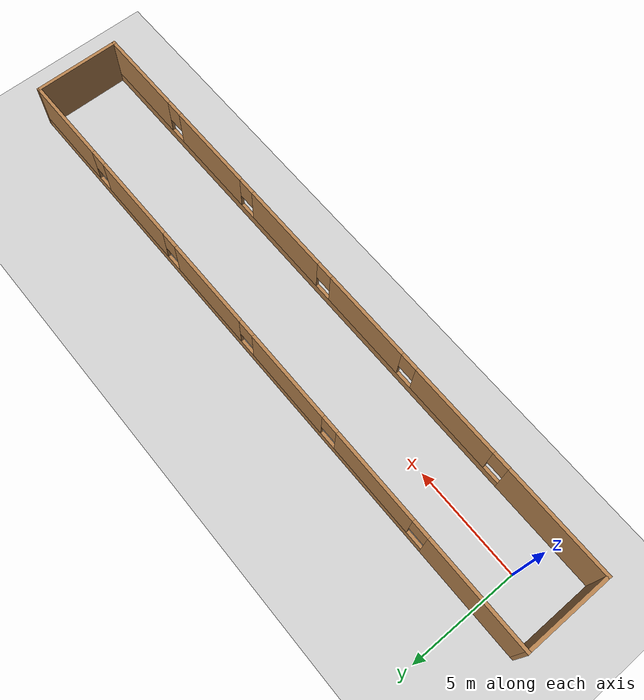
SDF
<sdf version="1.7">
 <world name="default">
  <light name="sun" type="directional">
   <pose>0 0 10 0 -0 0</pose>
   <diffuse>0.8 0.8 0.8 1</diffuse>
   <specular>0.2 0.2 0.2 1</specular>
   <attenuation>
    <range>1000</range>
    <constant>0.9</constant>
    <linear>0.01</linear>
    <quadratic>0.001</quadratic>
   </attenuation>
   <direction>-0.5 0.1 -0.9</direction>
   <spot><inner_angle>0</inner_angle><outer_angle>0</outer_angle><falloff>0</falloff></spot>
  </light>
  <model name="ground_plane">
   <static>1</static>
   <link name="link">
    <collision name="collision">
     <geometry><plane><normal>0 0 1</normal><size>100 100</size></plane></geometry>
     <surface>
      <contact><collide_bitmask>65535</collide_bitmask></contact>
      <friction><ode><mu>100</mu><mu2>50</mu2></ode></friction>
     </surface>
    </collision>
    <visual name="visual">
     <cast_shadows>0</cast_shadows>
     <geometry><plane><normal>0 0 1</normal><size>100 100</size></plane></geometry>
     <material>
      <script><uri>file://media/materials/scripts/gazebo.material</uri><name>Gazebo/Grey</name></script>
     </material>
    </visual>
   </link>
  </model>
  <gravity>0 0 -9.8</gravity>
  <magnetic_field>6e-06 2.3e-05 -4.2e-05</magnetic_field>
  <atmosphere type="adiabatic"/>
  <physics type="ode">
   <max_step_size>0.001</max_step_size>
   <real_time_factor>1</real_time_factor>
   <real_time_update_rate>1000</real_time_update_rate>
  </physics>
  <scene><ambient>0.4 0.4 0.4 1</ambient><background>0.7 0.7 0.7 1</background><shadows>1</shadows></scene>
  <spherical_coordinates>
   <surface_model>EARTH_WGS84</surface_model>
   <latitude_deg>0</latitude_deg>
   <longitude_deg>0</longitude_deg>
   <elevation>0</elevation>
   <heading_deg>0</heading_deg>
  </spherical_coordinates>
  <model name="corredor2">
   <pose>12.8414 0.061991 0 0 -0 0</pose>
   <link name="Wall_11">
    <collision name="Wall_11_Collision">
     <geometry><box><size>4.09332 0.15 2.5</size></box></geometry>
     <pose>0 0 1.25 0 -0 0</pose>
    </collision>
    <visual name="Wall_11_Visual">
     <pose>0 0 1.25 0 -0 0</pose>
     <geometry><box><size>4.09332 0.15 2.5</size></box></geometry>
     <material>
      <script><uri>file://media/materials/scripts/gazebo.material</uri><name>Gazebo/Wood</name></script>
      <ambient>1 1 1 1</ambient>
     </material>
     <meta><layer>0</layer></meta>
    </visual>
    <pose>-14.925 -0 0 0 -0 1.5708</pose>
   </link>
   <link name="Wall_13">
    <pose>-1e-06 1.97152 0 0 -0 0</pose>
    <visual name="Wall_13_Visual_0">
     <pose>-12.4917 0 1.25 0 -0 0</pose>
     <geometry><box><size>5.01668 0.15 2.5</size></box></geometry>
     <material>
      <script><uri>file://media/materials/scripts/gazebo.material</uri><name>Gazebo/Wood</name></script>
      <ambient>1 1 1 1</ambient>
     </material>
     <meta><layer>0</layer></meta>
    </visual>
    <collision name="Wall_13_Collision_0">
     <geometry><box><size>5.01668 0.15 2.5</size></box></geometry>
     <pose>-12.4917 0 1.25 0 -0 0</pose>
    </collision>
    <visual name="Wall_13_Visual_1">
     <pose>2.50834 0 0.25 0 -0 0</pose>
     <geometry><box><size>24.9833 0.15 0.5</size></box></geometry>
     <material>
      <script><uri>file://media/materials/scripts/gazebo.material</uri><name>Gazebo/Wood</name></script>
      <ambient>1 1 1 1</ambient>
     </material>
     <meta><layer>0</layer></meta>
    </visual>
    <collision name="Wall_13_Collision_1">
     <geometry><box><size>24.9833 0.15 0.5</size></box></geometry>
     <pose>2.50834 0 0.25 0 -0 0</pose>
    </collision>
    <visual name="Wall_13_Visual_2">
     <pose>-7.08924 0 1.5 0 -0 0</pose>
     <geometry><box><size>4.18817 0.15 2</size></box></geometry>
     <material>
      <script><uri>file://media/materials/scripts/gazebo.material</uri><name>Gazebo/Wood</name></script>
      <ambient>1 1 1 1</ambient>
     </material>
     <meta><layer>0</layer></meta>
    </visual>
    <collision name="Wall_13_Collision_2">
     <geometry><box><size>4.18817 0.15 2</size></box></geometry>
     <pose>-7.08924 0 1.5 0 -0 0</pose>
    </collision>
    <visual name="Wall_13_Visual_3">
     <pose>-2.09102 0 1.5 0 -0 0</pose>
     <geometry><box><size>4.20828 0.15 2</size></box></geometry>
     <material>
      <script><uri>file://media/materials/scripts/gazebo.material</uri><name>Gazebo/Wood</name></script>
      <ambient>1 1 1 1</ambient>
     </material>
     <meta><layer>0</layer></meta>
    </visual>
    <collision name="Wall_13_Collision_3">
     <geometry><box><size>4.20828 0.15 2</size></box></geometry>
     <pose>-2.09102 0 1.5 0 -0 0</pose>
    </collision>
    <visual name="Wall_13_Visual_4">
     <pose>2.90721 0 1.5 0 -0 0</pose>
     <geometry><box><size>4.18816 0.15 2</size></box></geometry>
     <material>
      <script><uri>file://media/materials/scripts/gazebo.material</uri><name>Gazebo/Wood</name></script>
      <ambient>1 1 1 1</ambient>
     </material>
     <meta><layer>0</layer></meta>
    </visual>
    <collision name="Wall_13_Collision_4">
     <geometry><box><size>4.18816 0.15 2</size></box></geometry>
     <pose>2.90721 0 1.5 0 -0 0</pose>
    </collision>
    <visual name="Wall_13_Visual_5">
     <pose>7.90362 0 1.5 0 -0 0</pose>
     <geometry><box><size>4.20467 0.15 2</size></box></geometry>
     <material>
      <script><uri>file://media/materials/scripts/gazebo.material</uri><name>Gazebo/Wood</name></script>
      <ambient>1 1 1 1</ambient>
     </material>
     <meta><layer>0</layer></meta>
    </visual>
    <collision name="Wall_13_Collision_5">
     <geometry><box><size>4.20467 0.15 2</size></box></geometry>
     <pose>7.90362 0 1.5 0 -0 0</pose>
    </collision>
    <visual name="Wall_13_Visual_6">
     <pose>12.903 0 1.5 0 -0 0</pose>
     <geometry><box><size>4.19404 0.15 2</size></box></geometry>
     <material>
      <script><uri>file://media/materials/scripts/gazebo.material</uri><name>Gazebo/Wood</name></script>
      <ambient>1 1 1 1</ambient>
     </material>
     <meta><layer>0</layer></meta>
    </visual>
    <collision name="Wall_13_Collision_6">
     <geometry><box><size>4.19404 0.15 2</size></box></geometry>
     <pose>12.903 0 1.5 0 -0 0</pose>
    </collision>
    <visual name="Wall_13_Visual_7">
     <pose>-9.58332 0 1.9 0 -0 0</pose>
     <geometry><box><size>0.8 0.15 1.2</size></box></geometry>
     <material>
      <script><uri>file://media/materials/scripts/gazebo.material</uri><name>Gazebo/Wood</name></script>
      <ambient>1 1 1 1</ambient>
     </material>
     <meta><layer>0</layer></meta>
    </visual>
    <collision name="Wall_13_Collision_7">
     <geometry><box><size>0.8 0.15 1.2</size></box></geometry>
     <pose>-9.58332 0 1.9 0 -0 0</pose>
    </collision>
    <visual name="Wall_13_Visual_8">
     <pose>-4.59516 0 1.9 0 -0 0</pose>
     <geometry><box><size>0.8 0.15 1.2</size></box></geometry>
     <material>
      <script><uri>file://media/materials/scripts/gazebo.material</uri><name>Gazebo/Wood</name></script>
      <ambient>1 1 1 1</ambient>
     </material>
     <meta><layer>0</layer></meta>
    </visual>
    <collision name="Wall_13_Collision_8">
     <geometry><box><size>0.8 0.15 1.2</size></box></geometry>
     <pose>-4.59516 0 1.9 0 -0 0</pose>
    </collision>
    <visual name="Wall_13_Visual_9">
     <pose>0.413124 0 1.9 0 -0 0</pose>
     <geometry><box><size>0.8 0.15 1.2</size></box></geometry>
     <material>
      <script><uri>file://media/materials/scripts/gazebo.material</uri><name>Gazebo/Wood</name></script>
      <ambient>1 1 1 1</ambient>
     </material>
     <meta><layer>0</layer></meta>
    </visual>
    <collision name="Wall_13_Collision_9">
     <geometry><box><size>0.8 0.15 1.2</size></box></geometry>
     <pose>0.413124 0 1.9 0 -0 0</pose>
    </collision>
    <visual name="Wall_13_Visual_10">
     <pose>5.40129 0 1.9 0 -0 0</pose>
     <geometry><box><size>0.8 0.15 1.2</size></box></geometry>
     <material>
      <script><uri>file://media/materials/scripts/gazebo.material</uri><name>Gazebo/Wood</name></script>
      <ambient>1 1 1 1</ambient>
     </material>
     <meta><layer>0</layer></meta>
    </visual>
    <collision name="Wall_13_Collision_10">
     <geometry><box><size>0.8 0.15 1.2</size></box></geometry>
     <pose>5.40129 0 1.9 0 -0 0</pose>
    </collision>
    <visual name="Wall_13_Visual_11">
     <pose>10.406 0 1.9 0 -0 0</pose>
     <geometry><box><size>0.8 0.15 1.2</size></box></geometry>
     <material>
      <script><uri>file://media/materials/scripts/gazebo.material</uri><name>Gazebo/Wood</name></script>
      <ambient>1 1 1 1</ambient>
     </material>
     <meta><layer>0</layer></meta>
    </visual>
    <collision name="Wall_13_Collision_11">
     <geometry><box><size>0.8 0.15 1.2</size></box></geometry>
     <pose>10.406 0 1.9 0 -0 0</pose>
    </collision>
   </link>
   <link name="Wall_15">
    <pose>-1e-06 -1.97152 0 0 -0 0</pose>
    <visual name="Wall_15_Visual_0">
     <pose>-12.5006 0 1.25 0 -0 0</pose>
     <geometry><box><size>4.99882 0.15 2.5</size></box></geometry>
     <material>
      <script><uri>file://media/materials/scripts/gazebo.material</uri><name>Gazebo/Wood</name></script>
      <ambient>1 1 1 1</ambient>
     </material>
     <meta><layer>0</layer></meta>
    </visual>
    <collision name="Wall_15_Collision_0">
     <geometry><box><size>4.99882 0.15 2.5</size></box></geometry>
     <pose>-12.5006 0 1.25 0 -0 0</pose>
    </collision>
    <visual name="Wall_15_Visual_1">
     <pose>2.49941 0 0.25 0 -0 0</pose>
     <geometry><box><size>25.0012 0.15 0.5</size></box></geometry>
     <material>
      <script><uri>file://media/materials/scripts/gazebo.material</uri><name>Gazebo/Wood</name></script>
      <ambient>1 1 1 1</ambient>
     </material>
     <meta><layer>0</layer></meta>
    </visual>
    <collision name="Wall_15_Collision_1">
     <geometry><box><size>25.0012 0.15 0.5</size></box></geometry>
     <pose>2.49941 0 0.25 0 -0 0</pose>
    </collision>
    <visual name="Wall_15_Visual_2">
     <pose>-7.1001 0 1.5 0 -0 0</pose>
     <geometry><box><size>4.20216 0.15 2</size></box></geometry>
     <material>
      <script><uri>file://media/materials/scripts/gazebo.material</uri><name>Gazebo/Wood</name></script>
      <ambient>1 1 1 1</ambient>
     </material>
     <meta><layer>0</layer></meta>
    </visual>
    <collision name="Wall_15_Collision_2">
     <geometry><box><size>4.20216 0.15 2</size></box></geometry>
     <pose>-7.1001 0 1.5 0 -0 0</pose>
    </collision>
    <visual name="Wall_15_Visual_3">
     <pose>-2.09794 0 1.5 0 -0 0</pose>
     <geometry><box><size>4.20216 0.15 2</size></box></geometry>
     <material>
      <script><uri>file://media/materials/scripts/gazebo.material</uri><name>Gazebo/Wood</name></script>
      <ambient>1 1 1 1</ambient>
     </material>
     <meta><layer>0</layer></meta>
    </visual>
    <collision name="Wall_15_Collision_3">
     <geometry><box><size>4.20216 0.15 2</size></box></geometry>
     <pose>-2.09794 0 1.5 0 -0 0</pose>
    </collision>
    <visual name="Wall_15_Visual_4">
     <pose>2.90736 0 1.5 0 -0 0</pose>
     <geometry><box><size>4.20844 0.15 2</size></box></geometry>
     <material>
      <script><uri>file://media/materials/scripts/gazebo.material</uri><name>Gazebo/Wood</name></script>
      <ambient>1 1 1 1</ambient>
     </material>
     <meta><layer>0</layer></meta>
    </visual>
    <collision name="Wall_15_Collision_4">
     <geometry><box><size>4.20844 0.15 2</size></box></geometry>
     <pose>2.90736 0 1.5 0 -0 0</pose>
    </collision>
    <visual name="Wall_15_Visual_5">
     <pose>7.91045 0 1.5 0 -0 0</pose>
     <geometry><box><size>4.19773 0.15 2</size></box></geometry>
     <material>
      <script><uri>file://media/materials/scripts/gazebo.material</uri><name>Gazebo/Wood</name></script>
      <ambient>1 1 1 1</ambient>
     </material>
     <meta><layer>0</layer></meta>
    </visual>
    <collision name="Wall_15_Collision_5">
     <geometry><box><size>4.19773 0.15 2</size></box></geometry>
     <pose>7.91045 0 1.5 0 -0 0</pose>
    </collision>
    <visual name="Wall_15_Visual_6">
     <pose>12.9047 0 1.5 0 -0 0</pose>
     <geometry><box><size>4.19069 0.15 2</size></box></geometry>
     <material>
      <script><uri>file://media/materials/scripts/gazebo.material</uri><name>Gazebo/Wood</name></script>
      <ambient>1 1 1 1</ambient>
     </material>
     <meta><layer>0</layer></meta>
    </visual>
    <collision name="Wall_15_Collision_6">
     <geometry><box><size>4.19069 0.15 2</size></box></geometry>
     <pose>12.9047 0 1.5 0 -0 0</pose>
    </collision>
    <visual name="Wall_15_Visual_7">
     <pose>-9.60118 0 1.9 0 -0 0</pose>
     <geometry><box><size>0.8 0.15 1.2</size></box></geometry>
     <material>
      <script><uri>file://media/materials/scripts/gazebo.material</uri><name>Gazebo/Wood</name></script>
      <ambient>1 1 1 1</ambient>
     </material>
     <meta><layer>0</layer></meta>
    </visual>
    <collision name="Wall_15_Collision_7">
     <geometry><box><size>0.8 0.15 1.2</size></box></geometry>
     <pose>-9.60118 0 1.9 0 -0 0</pose>
    </collision>
    <visual name="Wall_15_Visual_8">
     <pose>-4.59902 0 1.9 0 -0 0</pose>
     <geometry><box><size>0.8 0.15 1.2</size></box></geometry>
     <material>
      <script><uri>file://media/materials/scripts/gazebo.material</uri><name>Gazebo/Wood</name></script>
      <ambient>1 1 1 1</ambient>
     </material>
     <meta><layer>0</layer></meta>
    </visual>
    <collision name="Wall_15_Collision_8">
     <geometry><box><size>0.8 0.15 1.2</size></box></geometry>
     <pose>-4.59902 0 1.9 0 -0 0</pose>
    </collision>
    <visual name="Wall_15_Visual_9">
     <pose>0.403136 0 1.9 0 -0 0</pose>
     <geometry><box><size>0.8 0.15 1.2</size></box></geometry>
     <material>
      <script><uri>file://media/materials/scripts/gazebo.material</uri><name>Gazebo/Wood</name></script>
      <ambient>1 1 1 1</ambient>
     </material>
     <meta><layer>0</layer></meta>
    </visual>
    <collision name="Wall_15_Collision_9">
     <geometry><box><size>0.8 0.15 1.2</size></box></geometry>
     <pose>0.403136 0 1.9 0 -0 0</pose>
    </collision>
    <visual name="Wall_15_Visual_10">
     <pose>5.41158 0 1.9 0 -0 0</pose>
     <geometry><box><size>0.8 0.15 1.2</size></box></geometry>
     <material>
      <script><uri>file://media/materials/scripts/gazebo.material</uri><name>Gazebo/Wood</name></script>
      <ambient>1 1 1 1</ambient>
     </material>
     <meta><layer>0</layer></meta>
    </visual>
    <collision name="Wall_15_Collision_10">
     <geometry><box><size>0.8 0.15 1.2</size></box></geometry>
     <pose>5.41158 0 1.9 0 -0 0</pose>
    </collision>
    <visual name="Wall_15_Visual_11">
     <pose>10.4093 0 1.9 0 -0 0</pose>
     <geometry><box><size>0.8 0.15 1.2</size></box></geometry>
     <material>
      <script><uri>file://media/materials/scripts/gazebo.material</uri><name>Gazebo/Wood</name></script>
      <ambient>1 1 1 1</ambient>
     </material>
     <meta><layer>0</layer></meta>
    </visual>
    <collision name="Wall_15_Collision_11">
     <geometry><box><size>0.8 0.15 1.2</size></box></geometry>
     <pose>10.4093 0 1.9 0 -0 0</pose>
    </collision>
   </link>
   <link name="Wall_16">
    <collision name="Wall_16_Collision">
     <geometry><box><size>4.09305 0.15 2.5</size></box></geometry>
     <pose>0 0 1.25 0 -0 0</pose>
    </collision>
    <visual name="Wall_16_Visual">
     <pose>0 0 1.25 0 -0 0</pose>
     <geometry><box><size>4.09305 0.15 2.5</size></box></geometry>
     <material>
      <script><uri>file://media/materials/scripts/gazebo.material</uri><name>Gazebo/Wood</name></script>
      <ambient>1 1 1 1</ambient>
     </material>
     <meta><layer>0</layer></meta>
    </visual>
    <pose>14.925 -0 0 0 -0 1.5708</pose>
   </link>
   <static>1</static>
  </model>
 </world>
</sdf>
